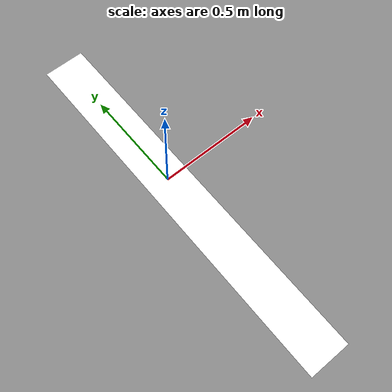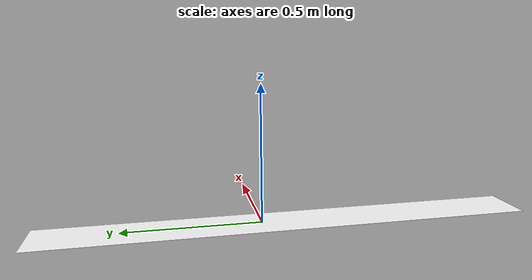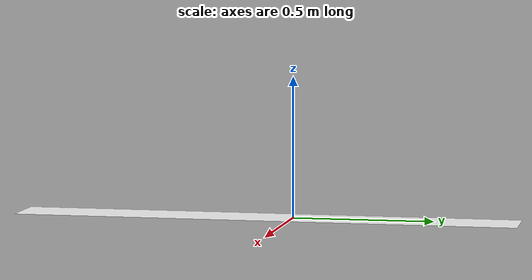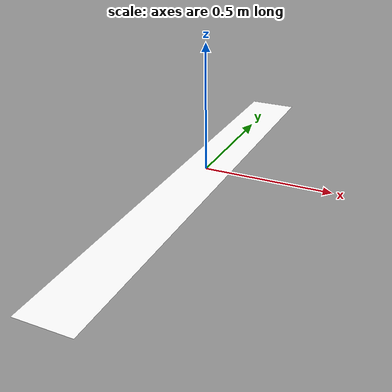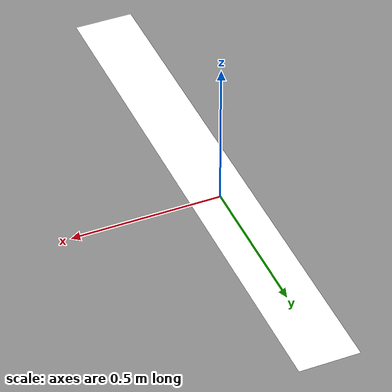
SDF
<?xml version="1.0"?>
<sdf version="1.6">
  <model name="I_letter">
    <static>true</static>
    <link name="I_plate">
      <inertial>
        <mass>1</mass>
        <inertia>
          <ixx>1</ixx>
          <ixy>0</ixy>
          <ixz>0</ixz>
          <iyy>1</iyy>
          <iyz>0</iyz>
          <izz>1</izz>
        </inertia>
      </inertial>

      <collision name="collision">
        <geometry>
          <mesh>
            <uri>meshes/I_letter.dae</uri>
          </mesh>
        </geometry>
        <surface>
          <contact>
            <collide_bitmask>0xffff</collide_bitmask>
          </contact>
          <friction>
            <ode>
              <mu>0.8</mu>
              <mu2>0.8</mu2>
            </ode>
          </friction>
        </surface>
      </collision>

      <visual name="visual">
        <geometry>
          <mesh>
            <uri>meshes/I_letter.dae</uri>
          </mesh>
        </geometry>
        <material>
          <ambient>1.0 1.0 1.0 1.0</ambient>
          <diffuse>1.0 1.0 1.0 1.0</diffuse>
          <specular>1.0 1.0 1.0 1.0</specular>
          <emissive>0.2 0.2 0.2 1.0</emissive>
          <pbr>
            <metal>
              <albedo_map></albedo_map>
              <metalness>1.0</metalness>
              <roughness>0.0</roughness>
            </metal>
          </pbr>
        </material>
        <laser_retro>50000.0</laser_retro>
      </visual>
    </link>
  </model>
</sdf>
